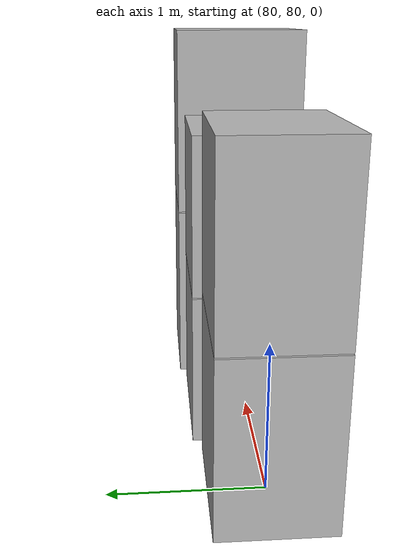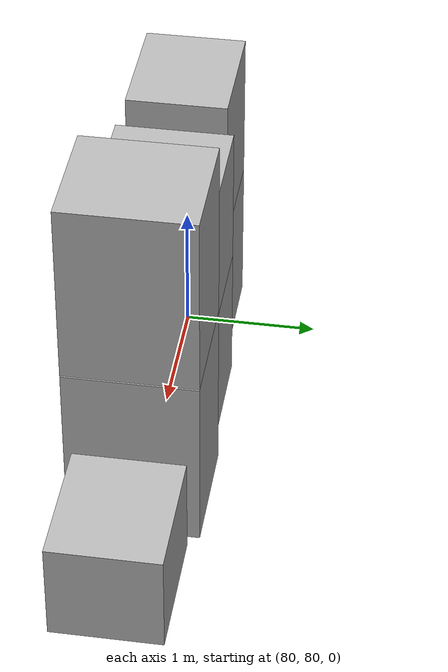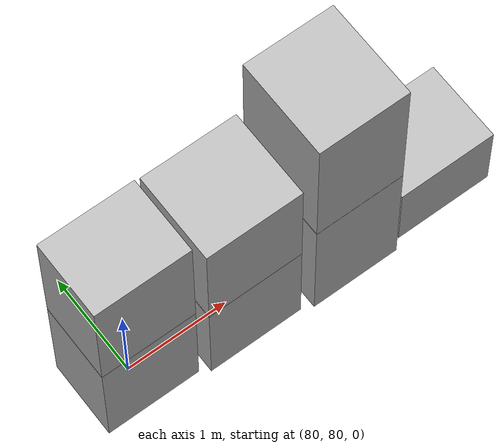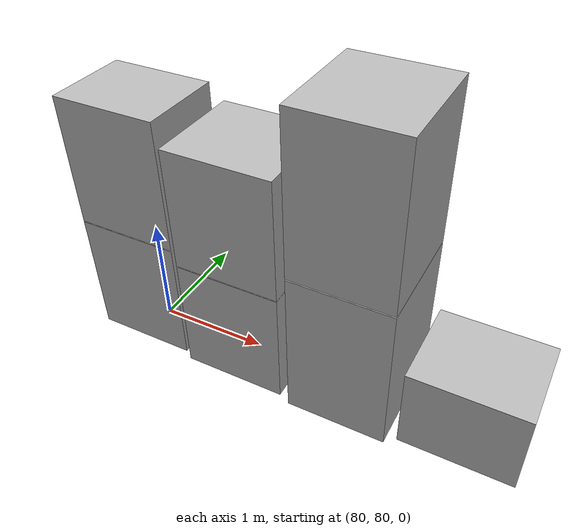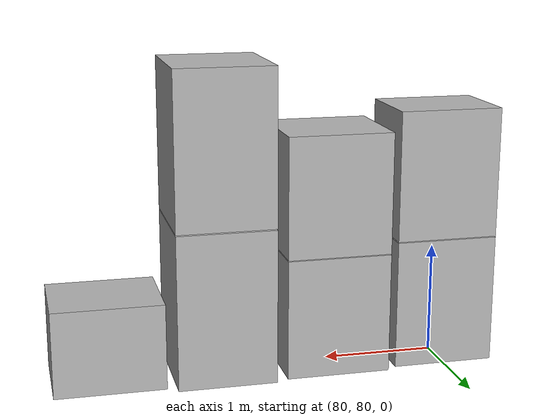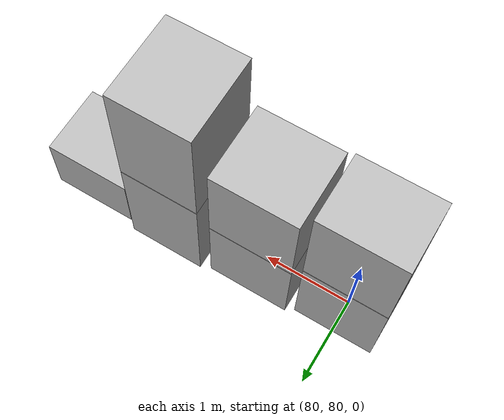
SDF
<sdf version="1.5">
 <world name="default">
  <model name="ground_plane">
   <static>true</static>
   <link name="link">
    <collision name="collision">
     <geometry><plane><normal>0 0 1</normal><size>250 250</size></plane></geometry>
     <surface><friction><ode><mu>1</mu><mu2>1</mu2></ode></friction></surface>
    </collision>
    <visual name="grass">
     <cast_shadows>false</cast_shadows>
     <geometry><mesh><uri>file://grass_plane/meshes/grass_plane.dae</uri></mesh></geometry>
    </visual>
   </link>
  </model>
  <model name="Cardboard_box_320">
   <link name="link_0">
    <pose>80 80 0 0 0 0</pose>
    <inertial>
     <mass>1</mass>
     <inertia>
      <ixx>0.166667</ixx>
      <ixy>0</ixy>
      <ixz>0</ixz>
      <iyy>0.166667</iyy>
      <iyz>0</iyz>
      <izz>0.166667</izz>
     </inertia>
    </inertial>
    <collision name="collision">
     <geometry>
      <mesh>
       <uri>model://Cardboard_box/meshes/cardboard_box.dae</uri>
       <scale>2.28651619298 1.86392848247 2.89947092099</scale>
      </mesh>
     </geometry>
    </collision>
    <visual name="visual">
     <geometry>
      <mesh>
       <uri>model://Cardboard_box/meshes/cardboard_box.dae</uri>
       <scale>2.28651619298 1.86392848247 2.89947092099</scale>
      </mesh>
     </geometry>
    </visual>
   </link>
   <static>1</static>
  </model>
  <model name="Cardboard_box_top_320">
   <link name="link_0">
    <pose>80 80 1.15978836839 0 0 0</pose>
    <inertial>
     <mass>1</mass>
     <inertia>
      <ixx>0.166667</ixx>
      <ixy>0</ixy>
      <ixz>0</ixz>
      <iyy>0.166667</iyy>
      <iyz>0</iyz>
      <izz>0.166667</izz>
     </inertia>
    </inertial>
    <collision name="collision">
     <geometry>
      <mesh>
       <uri>model://Cardboard_box/meshes/cardboard_box.dae</uri>
       <scale>2.28651619298 1.86392848247 2.89947092099</scale>
      </mesh>
     </geometry>
    </collision>
    <visual name="visual">
     <geometry>
      <mesh>
       <uri>model://Cardboard_box/meshes/cardboard_box.dae</uri>
       <scale>2.28651619298 1.86392848247 2.89947092099</scale>
      </mesh>
     </geometry>
    </visual>
   </link>
   <static>1</static>
  </model>
  <model name="Cardboard_box_321">
   <link name="link_0">
    <pose>81 80 0 0 0 0</pose>
    <inertial>
     <mass>1</mass>
     <inertia>
      <ixx>0.166667</ixx>
      <ixy>0</ixy>
      <ixz>0</ixz>
      <iyy>0.166667</iyy>
      <iyz>0</iyz>
      <izz>0.166667</izz>
     </inertia>
    </inertial>
    <collision name="collision">
     <geometry>
      <mesh>
       <uri>model://Cardboard_box/meshes/cardboard_box.dae</uri>
       <scale>2.32473050712 2.16083543052 2.69488020602</scale>
      </mesh>
     </geometry>
    </collision>
    <visual name="visual">
     <geometry>
      <mesh>
       <uri>model://Cardboard_box/meshes/cardboard_box.dae</uri>
       <scale>2.32473050712 2.16083543052 2.69488020602</scale>
      </mesh>
     </geometry>
    </visual>
   </link>
   <static>1</static>
  </model>
  <model name="Cardboard_box_top_321">
   <link name="link_0">
    <pose>81 80 1.07795208241 0 0 0</pose>
    <inertial>
     <mass>1</mass>
     <inertia>
      <ixx>0.166667</ixx>
      <ixy>0</ixy>
      <ixz>0</ixz>
      <iyy>0.166667</iyy>
      <iyz>0</iyz>
      <izz>0.166667</izz>
     </inertia>
    </inertial>
    <collision name="collision">
     <geometry>
      <mesh>
       <uri>model://Cardboard_box/meshes/cardboard_box.dae</uri>
       <scale>2.32473050712 2.16083543052 2.69488020602</scale>
      </mesh>
     </geometry>
    </collision>
    <visual name="visual">
     <geometry>
      <mesh>
       <uri>model://Cardboard_box/meshes/cardboard_box.dae</uri>
       <scale>2.32473050712 2.16083543052 2.69488020602</scale>
      </mesh>
     </geometry>
    </visual>
   </link>
   <static>1</static>
  </model>
  <model name="Cardboard_box_322">
   <link name="link_0">
    <pose>82 80 0 0 0 0</pose>
    <inertial>
     <mass>1</mass>
     <inertia>
      <ixx>0.166667</ixx>
      <ixy>0</ixy>
      <ixz>0</ixz>
      <iyy>0.166667</iyy>
      <iyz>0</iyz>
      <izz>0.166667</izz>
     </inertia>
    </inertial>
    <collision name="collision">
     <geometry>
      <mesh>
       <uri>model://Cardboard_box/meshes/cardboard_box.dae</uri>
       <scale>2.18338489613 2.40620086749 3.44937412884</scale>
      </mesh>
     </geometry>
    </collision>
    <visual name="visual">
     <geometry>
      <mesh>
       <uri>model://Cardboard_box/meshes/cardboard_box.dae</uri>
       <scale>2.18338489613 2.40620086749 3.44937412884</scale>
      </mesh>
     </geometry>
    </visual>
   </link>
   <static>1</static>
  </model>
  <model name="Cardboard_box_top_322">
   <link name="link_0">
    <pose>82 80 1.37974965154 0 0 0</pose>
    <inertial>
     <mass>1</mass>
     <inertia>
      <ixx>0.166667</ixx>
      <ixy>0</ixy>
      <ixz>0</ixz>
      <iyy>0.166667</iyy>
      <iyz>0</iyz>
      <izz>0.166667</izz>
     </inertia>
    </inertial>
    <collision name="collision">
     <geometry>
      <mesh>
       <uri>model://Cardboard_box/meshes/cardboard_box.dae</uri>
       <scale>2.18338489613 2.40620086749 3.44937412884</scale>
      </mesh>
     </geometry>
    </collision>
    <visual name="visual">
     <geometry>
      <mesh>
       <uri>model://Cardboard_box/meshes/cardboard_box.dae</uri>
       <scale>2.18338489613 2.40620086749 3.44937412884</scale>
      </mesh>
     </geometry>
    </visual>
   </link>
   <static>1</static>
  </model>
  <model name="Cardboard_box_323">
   <link name="link_0">
    <pose>83 80 0 0 0 0</pose>
    <inertial>
     <mass>1</mass>
     <inertia>
      <ixx>0.166667</ixx>
      <ixy>0</ixy>
      <ixz>0</ixz>
      <iyy>0.166667</iyy>
      <iyz>0</iyz>
      <izz>0.166667</izz>
     </inertia>
    </inertial>
    <collision name="collision">
     <geometry>
      <mesh>
       <uri>model://Cardboard_box/meshes/cardboard_box.dae</uri>
       <scale>2.42443792642 2.02095631707 1.91529864324</scale>
      </mesh>
     </geometry>
    </collision>
    <visual name="visual">
     <geometry>
      <mesh>
       <uri>model://Cardboard_box/meshes/cardboard_box.dae</uri>
       <scale>2.42443792642 2.02095631707 1.91529864324</scale>
      </mesh>
     </geometry>
    </visual>
   </link>
   <static>1</static>
  </model>
 </world>
</sdf>
